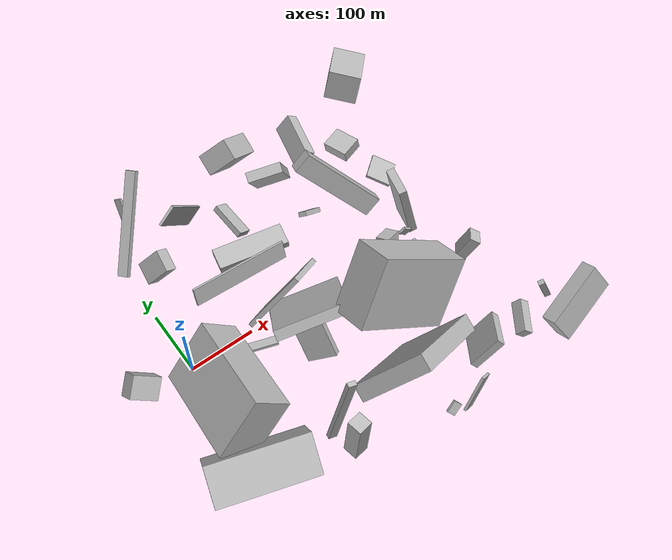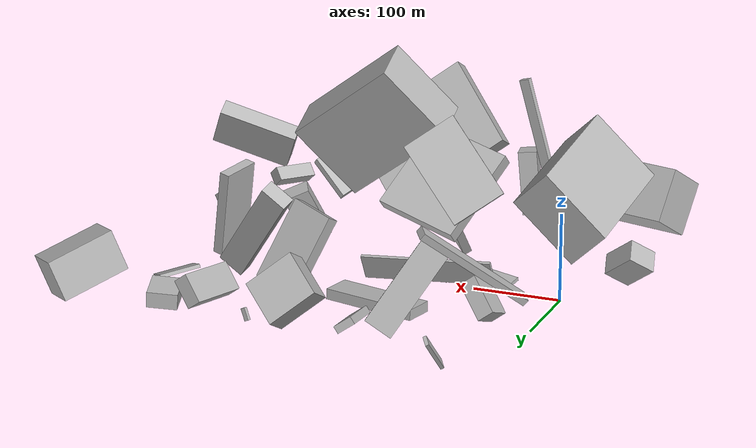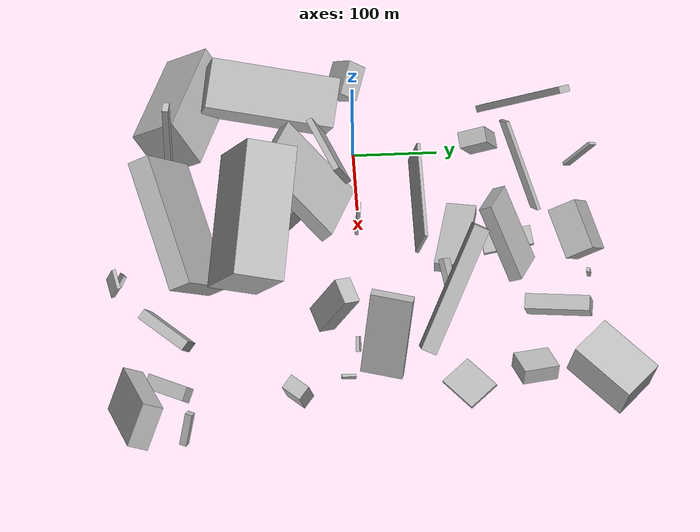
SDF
<sdf version="1.6">
 <world name="default">
  <scene>
   <sky><clouds><speed>12</speed></clouds></sky>
   <ambient>0.4 0.4 0.4 1</ambient>
   <background>0.7 0.7 0.7 1</background>
   <shadows>1</shadows>
  </scene>
  <gravity>0 0 -9.8066</gravity>
  <magnetic_field>6e-06 2.3e-05 -4.2e-05</magnetic_field>
  <physics default="0" name="default_physics" type="ode">
   <ode>
    <solver>
     <type>quick</type>
     <iters>10</iters>
     <sor>1.0</sor>
     <use_dynamic_moi_rescaling>0</use_dynamic_moi_rescaling>
    </solver>
    <constraints>
     <cfm>0</cfm>
     <erp>0.2</erp>
     <contact_max_correcting_vel>100</contact_max_correcting_vel>
     <contact_surface_layer>0.001</contact_surface_layer>
    </constraints>
   </ode>
   <max_step_size>0.004</max_step_size>
   <real_time_factor>1</real_time_factor>
   <real_time_update_rate>250</real_time_update_rate>
  </physics>
  <light name="sun" type="directional">
   <pose>0 0 10 0 0 0</pose>
   <diffuse>0.8 0.8 0.8 1</diffuse>
   <specular>0.2 0.2 0.2 1</specular>
   <attenuation>
    <range>1000</range>
    <constant>0.9</constant>
    <linear>0.01</linear>
    <quadratic>0.001</quadratic>
   </attenuation>
   <direction>-0.5 0.1 -0.9</direction>
  </light>
  <model name="building_1">
   <static>0</static>
   <pose>85.14870320867078 -216.19180646012205 62.50991495303627 0.0498480343188275 -0.26765879205779725 2.972841274649754</pose>
   <link name="link">
    <gravity>0</gravity>
    <pose>0 0 61.0 0 0 0</pose>
    <collision name="collision"><geometry><box><size>12 7 122</size></box></geometry></collision>
    <visual name="visual">
     <cast_shadows>0</cast_shadows>
     <geometry><box><size>12 7 122</size></box></geometry>
     <material>
      <script>
       <uri>model://HANNAS_wall/materials/scripts</uri>
       <uri>model://HANNAS_wall/materials/textures</uri>
       <name>vrc/HANNAS_wall</name>
      </script>
     </material>
    </visual>
   </link>
  </model>
  <model name="building_2">
   <static>0</static>
   <pose>229.4909520797703 -216.38349253976895 93.78395150401406 0.9696043541505258 -0.6155813781203238 -2.798163194041673</pose>
   <link name="link">
    <gravity>0</gravity>
    <pose>0 0 12.5 0 0 0</pose>
    <collision name="collision"><geometry><box><size>150 112 25</size></box></geometry></collision>
    <visual name="visual">
     <cast_shadows>0</cast_shadows>
     <geometry><box><size>150 112 25</size></box></geometry>
     <material>
      <script>
       <uri>model://HANNAS_wall/materials/scripts</uri>
       <uri>model://HANNAS_wall/materials/textures</uri>
       <name>vrc/HANNAS_wall</name>
      </script>
     </material>
    </visual>
   </link>
  </model>
  <model name="building_3">
   <static>0</static>
   <pose>241.43445250037007 154.32921118485285 78.50817683841348 1.0869548248133103 0.20254964701591044 2.74899611265206</pose>
   <link name="link">
    <gravity>0</gravity>
    <pose>0 0 7.5 0 0 0</pose>
    <collision name="collision"><geometry><box><size>52 93 15</size></box></geometry></collision>
    <visual name="visual">
     <cast_shadows>0</cast_shadows>
     <geometry><box><size>52 93 15</size></box></geometry>
     <material>
      <script>
       <uri>model://HANNAS_wall/materials/scripts</uri>
       <uri>model://HANNAS_wall/materials/textures</uri>
       <name>vrc/HANNAS_wall</name>
      </script>
     </material>
    </visual>
   </link>
  </model>
  <model name="building_4">
   <static>0</static>
   <pose>325.0280178014528 -133.79789104191278 95.43562614473504 0.8883047969969311 -0.31948562448490525 -1.49286463055363</pose>
   <link name="link">
    <gravity>0</gravity>
    <pose>0 0 75.0 0 0 0</pose>
    <collision name="collision"><geometry><box><size>57 102 150</size></box></geometry></collision>
    <visual name="visual">
     <cast_shadows>0</cast_shadows>
     <geometry><box><size>57 102 150</size></box></geometry>
     <material>
      <script>
       <uri>model://HANNAS_wall/materials/scripts</uri>
       <uri>model://HANNAS_wall/materials/textures</uri>
       <name>vrc/HANNAS_wall</name>
      </script>
     </material>
    </visual>
   </link>
  </model>
  <model name="building_5">
   <static>0</static>
   <pose>385.03867027221503 200.18865434906596 15.524818740702122 1.4547858931489155 -0.07316499608307298 0.29431439459253705</pose>
   <link name="link">
    <gravity>0</gravity>
    <pose>0 0 20.5 0 0 0</pose>
    <collision name="collision"><geometry><box><size>34 18 41</size></box></geometry></collision>
    <visual name="visual">
     <cast_shadows>0</cast_shadows>
     <geometry><box><size>34 18 41</size></box></geometry>
     <material>
      <script>
       <uri>model://HANNAS_wall/materials/scripts</uri>
       <uri>model://HANNAS_wall/materials/textures</uri>
       <name>vrc/HANNAS_wall</name>
      </script>
     </material>
    </visual>
   </link>
  </model>
  <model name="building_6">
   <static>0</static>
   <pose>387.2222882343496 40.98350968625695 63.472976630502544 1.4894872079865409 -0.17970521787669588 -0.23161720709871939</pose>
   <link name="link">
    <gravity>0</gravity>
    <pose>0 0 23.5 0 0 0</pose>
    <collision name="collision"><geometry><box><size>12 101 47</size></box></geometry></collision>
    <visual name="visual">
     <cast_shadows>0</cast_shadows>
     <geometry><box><size>12 101 47</size></box></geometry>
     <material>
      <script>
       <uri>model://HANNAS_wall/materials/scripts</uri>
       <uri>model://HANNAS_wall/materials/textures</uri>
       <name>vrc/HANNAS_wall</name>
      </script>
     </material>
    </visual>
   </link>
  </model>
  <model name="building_7">
   <static>0</static>
   <pose>24.715004952048893 152.2298452453908 31.72323529004768 -0.6815030809035295 0.352437622360404 -1.6934080700083212</pose>
   <link name="link">
    <gravity>0</gravity>
    <pose>0 0 22.0 0 0 0</pose>
    <collision name="collision"><geometry><box><size>33 19 44</size></box></geometry></collision>
    <visual name="visual">
     <cast_shadows>0</cast_shadows>
     <geometry><box><size>33 19 44</size></box></geometry>
     <material>
      <script>
       <uri>model://HANNAS_wall/materials/scripts</uri>
       <uri>model://HANNAS_wall/materials/textures</uri>
       <name>vrc/HANNAS_wall</name>
      </script>
     </material>
    </visual>
   </link>
  </model>
  <model name="building_8">
   <static>0</static>
   <pose>91.50435878235247 -19.801097846474 6.263820240001209 -0.08591645658971046 -1.2818545549585338 1.321122092894706</pose>
   <link name="link">
    <gravity>0</gravity>
    <pose>0 0 7.5 0 0 0</pose>
    <collision name="collision"><geometry><box><size>4 64 15</size></box></geometry></collision>
    <visual name="visual">
     <cast_shadows>0</cast_shadows>
     <geometry><box><size>4 64 15</size></box></geometry>
     <material>
      <script>
       <uri>model://HANNAS_wall/materials/scripts</uri>
       <uri>model://HANNAS_wall/materials/textures</uri>
       <name>vrc/HANNAS_wall</name>
      </script>
     </material>
    </visual>
   </link>
  </model>
  <model name="building_9">
   <static>0</static>
   <pose>443.56653858260165 252.6385165919466 48.943842537365626 0.3415936911530574 -0.15997838460386452 2.3582594764940787</pose>
   <link name="link">
    <gravity>0</gravity>
    <pose>0 0 23.0 0 0 0</pose>
    <collision name="collision"><geometry><box><size>50 76 46</size></box></geometry></collision>
    <visual name="visual">
     <cast_shadows>0</cast_shadows>
     <geometry><box><size>50 76 46</size></box></geometry>
     <material>
      <script>
       <uri>model://HANNAS_wall/materials/scripts</uri>
       <uri>model://HANNAS_wall/materials/textures</uri>
       <name>vrc/HANNAS_wall</name>
      </script>
     </material>
    </visual>
   </link>
  </model>
  <model name="building_10">
   <static>0</static>
   <pose>302.5584311602103 -40.814949386560215 56.98562267846173 2.535547420688266 -1.054318838019184 1.034376159910259</pose>
   <link name="link">
    <gravity>0</gravity>
    <pose>0 0 15.0 0 0 0</pose>
    <collision name="collision"><geometry><box><size>65 20 30</size></box></geometry></collision>
    <visual name="visual">
     <cast_shadows>0</cast_shadows>
     <geometry><box><size>65 20 30</size></box></geometry>
     <material>
      <script>
       <uri>model://HANNAS_wall/materials/scripts</uri>
       <uri>model://HANNAS_wall/materials/textures</uri>
       <name>vrc/HANNAS_wall</name>
      </script>
     </material>
    </visual>
   </link>
  </model>
  <model name="building_11">
   <static>0</static>
   <pose>407.95299239139837 -217.76225633218814 32.635677432860476 2.294382774665123 -0.06389143633157382 1.000063542978771</pose>
   <link name="link">
    <gravity>0</gravity>
    <pose>0 0 8.0 0 0 0</pose>
    <collision name="collision"><geometry><box><size>49 17 16</size></box></geometry></collision>
    <visual name="visual">
     <cast_shadows>0</cast_shadows>
     <geometry><box><size>49 17 16</size></box></geometry>
     <material>
      <script>
       <uri>model://HANNAS_wall/materials/scripts</uri>
       <uri>model://HANNAS_wall/materials/textures</uri>
       <name>vrc/HANNAS_wall</name>
      </script>
     </material>
    </visual>
   </link>
  </model>
  <model name="building_12">
   <static>0</static>
   <pose>92.35635062054465 185.37966538329337 56.8616559880296 0.9760114482949939 -0.18049376655683338 1.8844162751439428</pose>
   <link name="link">
    <gravity>0</gravity>
    <pose>0 0 16.5 0 0 0</pose>
    <collision name="collision"><geometry><box><size>4 109 33</size></box></geometry></collision>
    <visual name="visual">
     <cast_shadows>0</cast_shadows>
     <geometry><box><size>4 109 33</size></box></geometry>
     <material>
      <script>
       <uri>model://HANNAS_wall/materials/scripts</uri>
       <uri>model://HANNAS_wall/materials/textures</uri>
       <name>vrc/HANNAS_wall</name>
      </script>
     </material>
    </visual>
   </link>
  </model>
  <model name="building_13">
   <static>0</static>
   <pose>315.7928681073531 214.84812610144465 33.577774348981784 0.6338527081317158 -0.0925533297977271 1.3664486104953453</pose>
   <link name="link">
    <gravity>0</gravity>
    <pose>0 0 16.5 0 0 0</pose>
    <collision name="collision"><geometry><box><size>72 17 33</size></box></geometry></collision>
    <visual name="visual">
     <cast_shadows>0</cast_shadows>
     <geometry><box><size>72 17 33</size></box></geometry>
     <material>
      <script>
       <uri>model://HANNAS_wall/materials/scripts</uri>
       <uri>model://HANNAS_wall/materials/textures</uri>
       <name>vrc/HANNAS_wall</name>
      </script>
     </material>
    </visual>
   </link>
  </model>
  <model name="building_14">
   <static>0</static>
   <pose>158.28723263921947 -67.14046810674577 92.44273774268628 0.24874687263793022 -0.7374690936341416 -2.0424719274687</pose>
   <link name="link">
    <gravity>0</gravity>
    <pose>0 0 8.0 0 0 0</pose>
    <collision name="collision"><geometry><box><size>111 103 16</size></box></geometry></collision>
    <visual name="visual">
     <cast_shadows>0</cast_shadows>
     <geometry><box><size>111 103 16</size></box></geometry>
     <material>
      <script>
       <uri>model://HANNAS_wall/materials/scripts</uri>
       <uri>model://HANNAS_wall/materials/textures</uri>
       <name>vrc/HANNAS_wall</name>
      </script>
     </material>
    </visual>
   </link>
  </model>
  <model name="building_15">
   <static>0</static>
   <pose>468.4788142149497 -200.3194753150928 22.08822243059894 0.19284761974932235 -1.1838788279956476 2.5479570234272138</pose>
   <link name="link">
    <gravity>0</gravity>
    <pose>0 0 4.5 0 0 0</pose>
    <collision name="collision"><geometry><box><size>37 8 9</size></box></geometry></collision>
    <visual name="visual">
     <cast_shadows>0</cast_shadows>
     <geometry><box><size>37 8 9</size></box></geometry>
     <material>
      <script>
       <uri>model://HANNAS_wall/materials/scripts</uri>
       <uri>model://HANNAS_wall/materials/textures</uri>
       <name>vrc/HANNAS_wall</name>
      </script>
     </material>
    </visual>
   </link>
  </model>
  <model name="building_16">
   <static>0</static>
   <pose>238.8452572404131 -275.084336258595 32.19223107171815 0.856177239109636 -0.7649984661347738 2.380039695348469</pose>
   <link name="link">
    <gravity>0</gravity>
    <pose>0 0 9.0 0 0 0</pose>
    <collision name="collision"><geometry><box><size>14 4 18</size></box></geometry></collision>
    <visual name="visual">
     <cast_shadows>0</cast_shadows>
     <geometry><box><size>14 4 18</size></box></geometry>
     <material>
      <script>
       <uri>model://HANNAS_wall/materials/scripts</uri>
       <uri>model://HANNAS_wall/materials/textures</uri>
       <name>vrc/HANNAS_wall</name>
      </script>
     </material>
    </visual>
   </link>
  </model>
  <model name="building_17">
   <static>0</static>
   <pose>338.12456023553113 -217.8601097811646 49.12552153857145 2.2644166710463463 0.36430588943091424 0.980992937540886</pose>
   <link name="link">
    <gravity>0</gravity>
    <pose>0 0 6.0 0 0 0</pose>
    <collision name="collision"><geometry><box><size>60 54 12</size></box></geometry></collision>
    <visual name="visual">
     <cast_shadows>0</cast_shadows>
     <geometry><box><size>60 54 12</size></box></geometry>
     <material>
      <script>
       <uri>model://HANNAS_wall/materials/scripts</uri>
       <uri>model://HANNAS_wall/materials/textures</uri>
       <name>vrc/HANNAS_wall</name>
      </script>
     </material>
    </visual>
   </link>
  </model>
  <model name="building_18">
   <static>0</static>
   <pose>432.18364180202957 -266.7099495968736 45.44244457374106 0.9319524952075671 -1.0025184125387212 2.3827173885583073</pose>
   <link name="link">
    <gravity>0</gravity>
    <pose>0 0 48.0 0 0 0</pose>
    <collision name="collision"><geometry><box><size>50 23 96</size></box></geometry></collision>
    <visual name="visual">
     <cast_shadows>0</cast_shadows>
     <geometry><box><size>50 23 96</size></box></geometry>
     <material>
      <script>
       <uri>model://HANNAS_wall/materials/scripts</uri>
       <uri>model://HANNAS_wall/materials/textures</uri>
       <name>vrc/HANNAS_wall</name>
      </script>
     </material>
    </visual>
   </link>
  </model>
  <model name="building_19">
   <static>0</static>
   <pose>127.91236322264794 63.63253272814465 28.34463189050395 -0.08396721786972838 -0.3556135973129026 -1.5488460810610745</pose>
   <link name="link">
    <gravity>0</gravity>
    <pose>0 0 14.5 0 0 0</pose>
    <collision name="collision"><geometry><box><size>4 150 29</size></box></geometry></collision>
    <visual name="visual">
     <cast_shadows>0</cast_shadows>
     <geometry><box><size>4 150 29</size></box></geometry>
     <material>
      <script>
       <uri>model://HANNAS_wall/materials/scripts</uri>
       <uri>model://HANNAS_wall/materials/textures</uri>
       <name>vrc/HANNAS_wall</name>
      </script>
     </material>
    </visual>
   </link>
  </model>
  <model name="building_20">
   <static>0</static>
   <pose>381.5793718646837 -31.725723224957875 4.020748922626905 -2.341313099585371 -1.433306795315086 0.8399042886998735</pose>
   <link name="link">
    <gravity>0</gravity>
    <pose>0 0 8.0 0 0 0</pose>
    <collision name="collision"><geometry><box><size>4 4 16</size></box></geometry></collision>
    <visual name="visual">
     <cast_shadows>0</cast_shadows>
     <geometry><box><size>4 4 16</size></box></geometry>
     <material>
      <script>
       <uri>model://HANNAS_wall/materials/scripts</uri>
       <uri>model://HANNAS_wall/materials/textures</uri>
       <name>vrc/HANNAS_wall</name>
      </script>
     </material>
    </visual>
   </link>
  </model>
  <model name="building_21">
   <static>0</static>
   <pose>203.43664392995467 250.4584478924657 48.00011788302136 0.750023925006945 -0.4878759663389066 1.5518001754554227</pose>
   <link name="link">
    <gravity>0</gravity>
    <pose>0 0 26.0 0 0 0</pose>
    <collision name="collision"><geometry><box><size>33 58 52</size></box></geometry></collision>
    <visual name="visual">
     <cast_shadows>0</cast_shadows>
     <geometry><box><size>33 58 52</size></box></geometry>
     <material>
      <script>
       <uri>model://HANNAS_wall/materials/scripts</uri>
       <uri>model://HANNAS_wall/materials/textures</uri>
       <name>vrc/HANNAS_wall</name>
      </script>
     </material>
    </visual>
   </link>
  </model>
  <model name="building_22">
   <static>0</static>
   <pose>224.61837789732851 98.16102901229138 16.163510770573076 2.4787870419659126 -1.5445521374661113 -2.6858025062843187</pose>
   <link name="link">
    <gravity>0</gravity>
    <pose>0 0 54.0 0 0 0</pose>
    <collision name="collision"><geometry><box><size>12 35 108</size></box></geometry></collision>
    <visual name="visual">
     <cast_shadows>0</cast_shadows>
     <geometry><box><size>12 35 108</size></box></geometry>
     <material>
      <script>
       <uri>model://HANNAS_wall/materials/scripts</uri>
       <uri>model://HANNAS_wall/materials/textures</uri>
       <name>vrc/HANNAS_wall</name>
      </script>
     </material>
    </visual>
   </link>
  </model>
  <model name="building_23">
   <static>0</static>
   <pose>151.44863429215565 -81.48547829119954 44.8125953558622 2.3413030541871938 -0.8532743860208004 1.5545506699878646</pose>
   <link name="link">
    <gravity>0</gravity>
    <pose>0 0 5.0 0 0 0</pose>
    <collision name="collision"><geometry><box><size>65 45 10</size></box></geometry></collision>
    <visual name="visual">
     <cast_shadows>0</cast_shadows>
     <geometry><box><size>65 45 10</size></box></geometry>
     <material>
      <script>
       <uri>model://HANNAS_wall/materials/scripts</uri>
       <uri>model://HANNAS_wall/materials/textures</uri>
       <name>vrc/HANNAS_wall</name>
      </script>
     </material>
    </visual>
   </link>
  </model>
  <model name="building_24">
   <static>0</static>
   <pose>-20.009599376095807 -221.65921599915131 51.24691646945092 1.0226737458109822 -0.013253434151954227 2.8459619777451572</pose>
   <link name="link">
    <gravity>0</gravity>
    <pose>0 0 28.5 0 0 0</pose>
    <collision name="collision"><geometry><box><size>142 62 57</size></box></geometry></collision>
    <visual name="visual">
     <cast_shadows>0</cast_shadows>
     <geometry><box><size>142 62 57</size></box></geometry>
     <material>
      <script>
       <uri>model://HANNAS_wall/materials/scripts</uri>
       <uri>model://HANNAS_wall/materials/textures</uri>
       <name>vrc/HANNAS_wall</name>
      </script>
     </material>
    </visual>
   </link>
  </model>
  <model name="building_25">
   <static>0</static>
   <pose>364.780420880011 -14.344759857359804 36.63868225410242 -1.420508481715801 -0.7634282870242205 -0.24495797315547618</pose>
   <link name="link">
    <gravity>0</gravity>
    <pose>0 0 2.0 0 0 0</pose>
    <collision name="collision"><geometry><box><size>13 17 4</size></box></geometry></collision>
    <visual name="visual">
     <cast_shadows>0</cast_shadows>
     <geometry><box><size>13 17 4</size></box></geometry>
     <material>
      <script>
       <uri>model://HANNAS_wall/materials/scripts</uri>
       <uri>model://HANNAS_wall/materials/textures</uri>
       <name>vrc/HANNAS_wall</name>
      </script>
     </material>
    </visual>
   </link>
  </model>
  <model name="building_26">
   <static>0</static>
   <pose>116.75166578592243 -243.89463288587788 51.44376508374657 1.561865619203785 -0.09196179725689509 -2.9559802665653074</pose>
   <link name="link">
    <gravity>0</gravity>
    <pose>0 0 11.0 0 0 0</pose>
    <collision name="collision"><geometry><box><size>22 77 22</size></box></geometry></collision>
    <visual name="visual">
     <cast_shadows>0</cast_shadows>
     <geometry><box><size>22 77 22</size></box></geometry>
     <material>
      <script>
       <uri>model://HANNAS_wall/materials/scripts</uri>
       <uri>model://HANNAS_wall/materials/textures</uri>
       <name>vrc/HANNAS_wall</name>
      </script>
     </material>
    </visual>
   </link>
  </model>
  <model name="building_27">
   <static>0</static>
   <pose>322.0339394929368 103.78959644246733 69.38968533433163 1.1151396780853786 -0.629945397981601 0.03083442931081222</pose>
   <link name="link">
    <gravity>0</gravity>
    <pose>0 0 9.0 0 0 0</pose>
    <collision name="collision"><geometry><box><size>31 149 18</size></box></geometry></collision>
    <visual name="visual">
     <cast_shadows>0</cast_shadows>
     <geometry><box><size>31 149 18</size></box></geometry>
     <material>
      <script>
       <uri>model://HANNAS_wall/materials/scripts</uri>
       <uri>model://HANNAS_wall/materials/textures</uri>
       <name>vrc/HANNAS_wall</name>
      </script>
     </material>
    </visual>
   </link>
  </model>
  <model name="building_28">
   <static>0</static>
   <pose>433.96181801168984 -86.5384209433105 25.945671215713006 -0.43769145416012 -1.0152946971780819 -0.29837177923818126</pose>
   <link name="link">
    <gravity>0</gravity>
    <pose>0 0 8.5 0 0 0</pose>
    <collision name="collision"><geometry><box><size>39 24 17</size></box></geometry></collision>
    <visual name="visual">
     <cast_shadows>0</cast_shadows>
     <geometry><box><size>39 24 17</size></box></geometry>
     <material>
      <script>
       <uri>model://HANNAS_wall/materials/scripts</uri>
       <uri>model://HANNAS_wall/materials/textures</uri>
       <name>vrc/HANNAS_wall</name>
      </script>
     </material>
    </visual>
   </link>
  </model>
  <model name="building_29">
   <static>0</static>
   <pose>259.4586911651566 253.3558301828141 30.41535554183102 0.0785126390485311 0.4353617992162367 -0.20219855749698054</pose>
   <link name="link">
    <gravity>0</gravity>
    <pose>0 0 7.0 0 0 0</pose>
    <collision name="collision"><geometry><box><size>5 4 14</size></box></geometry></collision>
    <visual name="visual">
     <cast_shadows>0</cast_shadows>
     <geometry><box><size>5 4 14</size></box></geometry>
     <material>
      <script>
       <uri>model://HANNAS_wall/materials/scripts</uri>
       <uri>model://HANNAS_wall/materials/textures</uri>
       <name>vrc/HANNAS_wall</name>
      </script>
     </material>
    </visual>
   </link>
  </model>
  <model name="building_30">
   <static>0</static>
   <pose>26.116131122998482 -102.92060226669949 78.36851849122634 0.8037493725295533 -0.19332470723376857 -1.643486345375675</pose>
   <link name="link">
    <gravity>0</gravity>
    <pose>0 0 29.0 0 0 0</pose>
    <collision name="collision"><geometry><box><size>150 94 58</size></box></geometry></collision>
    <visual name="visual">
     <cast_shadows>0</cast_shadows>
     <geometry><box><size>150 94 58</size></box></geometry>
     <material>
      <script>
       <uri>model://HANNAS_wall/materials/scripts</uri>
       <uri>model://HANNAS_wall/materials/textures</uri>
       <name>vrc/HANNAS_wall</name>
      </script>
     </material>
    </visual>
   </link>
  </model>
  <model name="building_31">
   <static>0</static>
   <pose>160.91655579421365 -19.407574133512338 105.58768183405977 0.6417567993381141 -0.8467153849189744 -0.24606874673135545</pose>
   <link name="link">
    <gravity>0</gravity>
    <pose>0 0 32.5 0 0 0</pose>
    <collision name="collision"><geometry><box><size>104 7 65</size></box></geometry></collision>
    <visual name="visual">
     <cast_shadows>0</cast_shadows>
     <geometry><box><size>104 7 65</size></box></geometry>
     <material>
      <script>
       <uri>model://HANNAS_wall/materials/scripts</uri>
       <uri>model://HANNAS_wall/materials/textures</uri>
       <name>vrc/HANNAS_wall</name>
      </script>
     </material>
    </visual>
   </link>
  </model>
  <model name="building_32">
   <static>0</static>
   <pose>-60.71053079829784 -11.745360136143272 40.124438279614075 -0.8186911823196384 -0.5545215445187012 0.7376879969072072</pose>
   <link name="link">
    <gravity>0</gravity>
    <pose>0 0 21.0 0 0 0</pose>
    <collision name="collision"><geometry><box><size>33 25 42</size></box></geometry></collision>
    <visual name="visual">
     <cast_shadows>0</cast_shadows>
     <geometry><box><size>33 25 42</size></box></geometry>
     <material>
      <script>
       <uri>model://HANNAS_wall/materials/scripts</uri>
       <uri>model://HANNAS_wall/materials/textures</uri>
       <name>vrc/HANNAS_wall</name>
      </script>
     </material>
    </visual>
   </link>
  </model>
  <model name="building_33">
   <static>0</static>
   <pose>44.385384616147846 268.7418651469572 27.01725137377325 -1.0120918710425313 -0.43229048842753115 -2.7609251076570147</pose>
   <link name="link">
    <gravity>0</gravity>
    <pose>0 0 6.0 0 0 0</pose>
    <collision name="collision"><geometry><box><size>4 46 12</size></box></geometry></collision>
    <visual name="visual">
     <cast_shadows>0</cast_shadows>
     <geometry><box><size>4 46 12</size></box></geometry>
     <material>
      <script>
       <uri>model://HANNAS_wall/materials/scripts</uri>
       <uri>model://HANNAS_wall/materials/textures</uri>
       <name>vrc/HANNAS_wall</name>
      </script>
     </material>
    </visual>
   </link>
  </model>
  <model name="building_34">
   <static>0</static>
   <pose>179.03042228745633 168.0033229115034 16.58718744799541 2.5275300993943777 0.1400082659185294 -1.4823787135828752</pose>
   <link name="link">
    <gravity>0</gravity>
    <pose>0 0 4.5 0 0 0</pose>
    <collision name="collision"><geometry><box><size>58 22 9</size></box></geometry></collision>
    <visual name="visual">
     <cast_shadows>0</cast_shadows>
     <geometry><box><size>58 22 9</size></box></geometry>
     <material>
      <script>
       <uri>model://HANNAS_wall/materials/scripts</uri>
       <uri>model://HANNAS_wall/materials/textures</uri>
       <name>vrc/HANNAS_wall</name>
      </script>
     </material>
    </visual>
   </link>
  </model>
  <model name="building_35">
   <static>0</static>
   <pose>410.8887792544626 106.98988645394994 13.290374139874261 -0.17450002038787105 0.3092237235296214 -0.9211493144887908</pose>
   <link name="link">
    <gravity>0</gravity>
    <pose>0 0 2.0 0 0 0</pose>
    <collision name="collision"><geometry><box><size>38 46 4</size></box></geometry></collision>
    <visual name="visual">
     <cast_shadows>0</cast_shadows>
     <geometry><box><size>38 46 4</size></box></geometry>
     <material>
      <script>
       <uri>model://HANNAS_wall/materials/scripts</uri>
       <uri>model://HANNAS_wall/materials/textures</uri>
       <name>vrc/HANNAS_wall</name>
      </script>
     </material>
    </visual>
   </link>
  </model>
  <model name="building_36">
   <static>0</static>
   <pose>282.9159107555049 96.7193342716547 32.52895780587352 0.7005101751443046 0.6186250866773508 -1.9370780336939644</pose>
   <link name="link">
    <gravity>0</gravity>
    <pose>0 0 19.5 0 0 0</pose>
    <collision name="collision"><geometry><box><size>7 13 39</size></box></geometry></collision>
    <visual name="visual">
     <cast_shadows>0</cast_shadows>
     <geometry><box><size>7 13 39</size></box></geometry>
     <material>
      <script>
       <uri>model://HANNAS_wall/materials/scripts</uri>
       <uri>model://HANNAS_wall/materials/textures</uri>
       <name>vrc/HANNAS_wall</name>
      </script>
     </material>
    </visual>
   </link>
  </model>
  <model name="building_37">
   <static>0</static>
   <pose>132.26407029020248 -0.8392995748762477 21.741484883584345 1.5734940052131074 0.08534349251464406 1.5079523072895984</pose>
   <link name="link">
    <gravity>0</gravity>
    <pose>0 0 7.0 0 0 0</pose>
    <collision name="collision"><geometry><box><size>4 38 14</size></box></geometry></collision>
    <visual name="visual">
     <cast_shadows>0</cast_shadows>
     <geometry><box><size>4 38 14</size></box></geometry>
     <material>
      <script>
       <uri>model://HANNAS_wall/materials/scripts</uri>
       <uri>model://HANNAS_wall/materials/textures</uri>
       <name>vrc/HANNAS_wall</name>
      </script>
     </material>
    </visual>
   </link>
  </model>
  <model name="building_38">
   <static>0</static>
   <pose>32.950693711159076 197.23832578660597 99.4680260552561 0.6765368864278147 -0.2563913248899534 -0.9583449261936401</pose>
   <link name="link">
    <gravity>0</gravity>
    <pose>0 0 4.0 0 0 0</pose>
    <collision name="collision"><geometry><box><size>16 150 8</size></box></geometry></collision>
    <visual name="visual">
     <cast_shadows>0</cast_shadows>
     <geometry><box><size>16 150 8</size></box></geometry>
     <material>
      <script>
       <uri>model://HANNAS_wall/materials/scripts</uri>
       <uri>model://HANNAS_wall/materials/textures</uri>
       <name>vrc/HANNAS_wall</name>
      </script>
     </material>
    </visual>
   </link>
  </model>
  <model name="building_39">
   <static>0</static>
   <pose>260.63622494878496 -284.1574995386935 38.428388254285764 0.6686349240445877 -0.017687488380271354 1.8609179204095823</pose>
   <link name="link">
    <gravity>0</gravity>
    <pose>0 0 27.5 0 0 0</pose>
    <collision name="collision"><geometry><box><size>4 22 55</size></box></geometry></collision>
    <visual name="visual">
     <cast_shadows>0</cast_shadows>
     <geometry><box><size>4 22 55</size></box></geometry>
     <material>
      <script>
       <uri>model://HANNAS_wall/materials/scripts</uri>
       <uri>model://HANNAS_wall/materials/textures</uri>
       <name>vrc/HANNAS_wall</name>
      </script>
     </material>
    </visual>
   </link>
  </model>
 </world>
</sdf>
